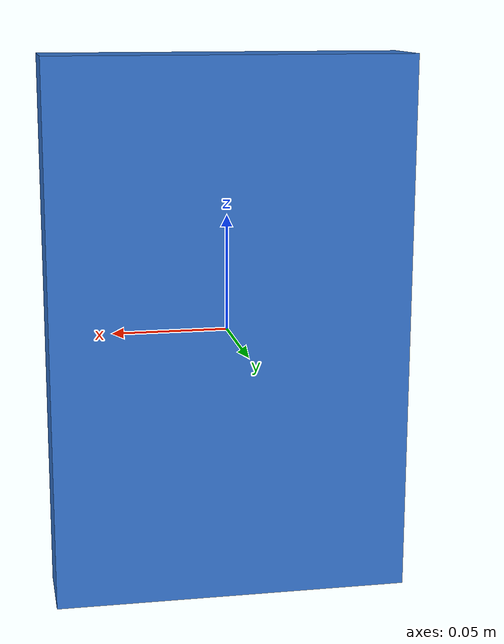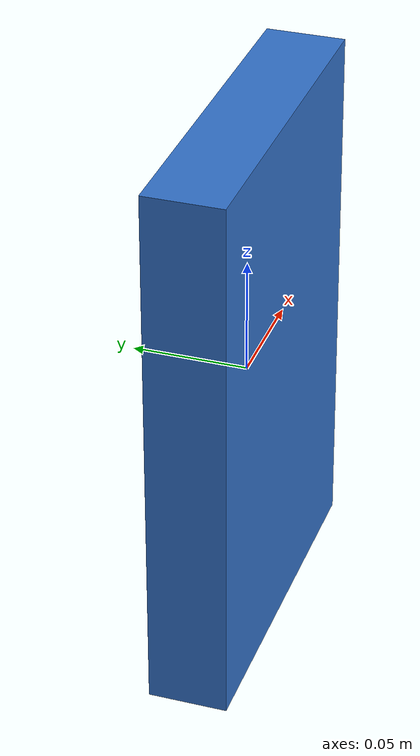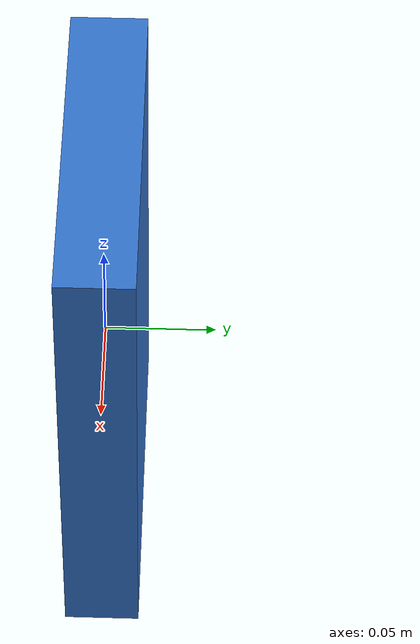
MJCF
<mujoco model="book_medium">
  <compiler angle="radian"/>
  <!-- Full dimensions (m): 0.156 0.034 0.236; local X depth, Y thickness, Z height.
       Uniform-box inertia is explicit; geoms do not add mass. -->
  <worldbody>
    <body name="book">
      <freejoint name="book/free_joint"/>
      <inertial pos="0 0 0" quat="1 0 0 0" mass="0.45" diaginertia="0.00213195 0.0030012 0.00095595"/>
      <geom name="book/collision" type="box" size="0.078 0.017 0.118" mass="0"
            friction="0.9 0.005 0.0001" group="3" rgba="0 0 0 0"/>
      <geom name="book/visual" type="box" size="0.078 0.017 0.118" mass="0"
            contype="0" conaffinity="0" group="1" rgba="0.2 0.45 0.8 1"/>
      <site name="book/center" size="0.005 0 0" group="5"/>
      <site name="book/grasp_target" pos="-0.066 0 0"
            quat="0.5 0.5 0.5 0.5" size="0.005 0 0" rgba="1 0.5 0 1" group="1"/>
    </body>
  </worldbody>
</mujoco>
